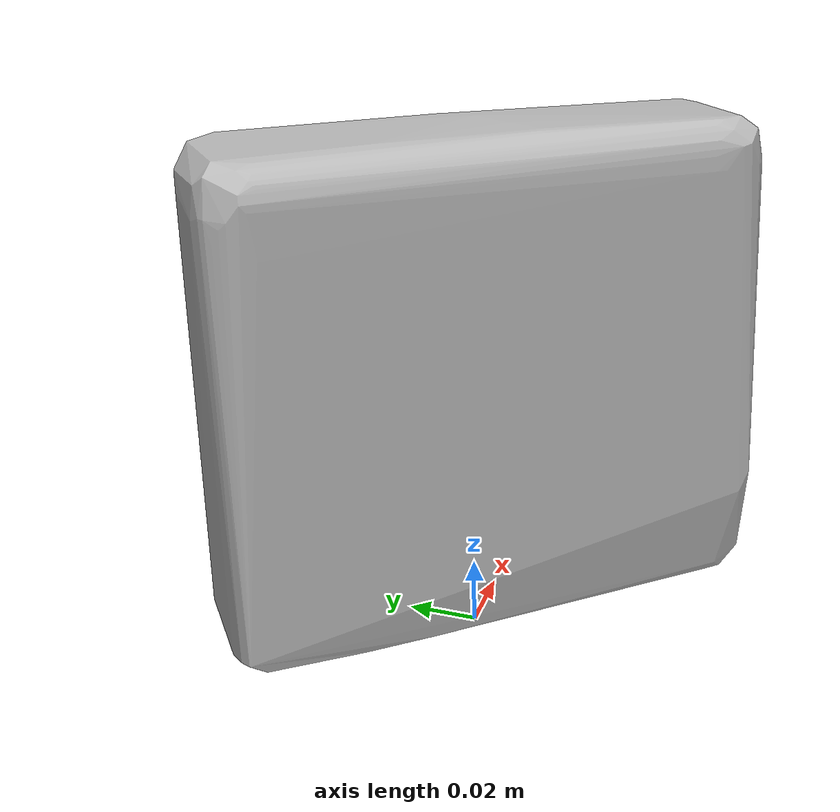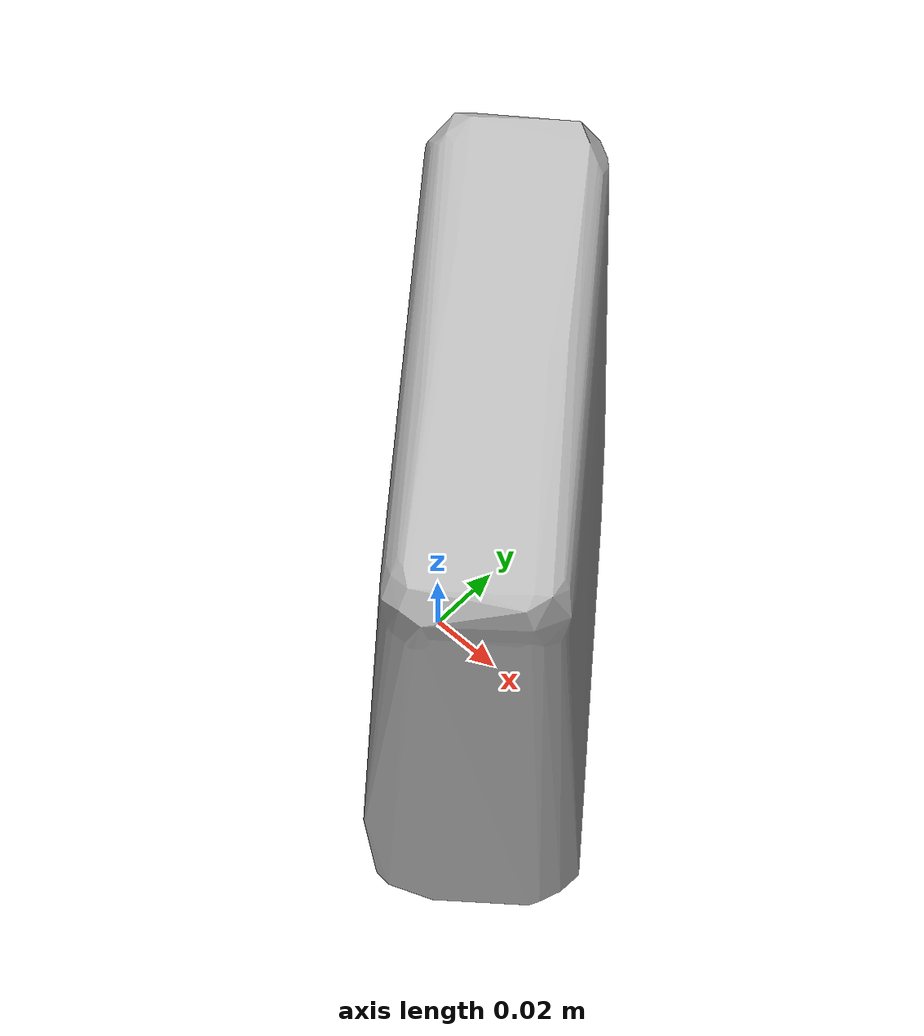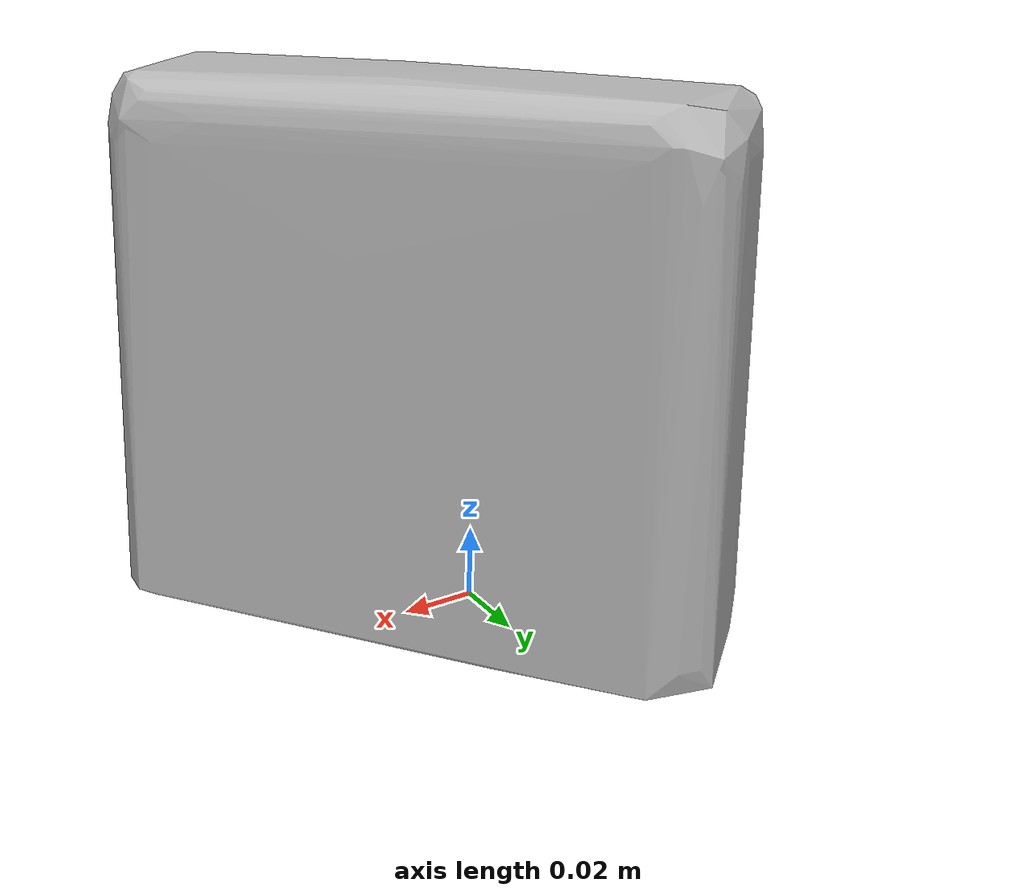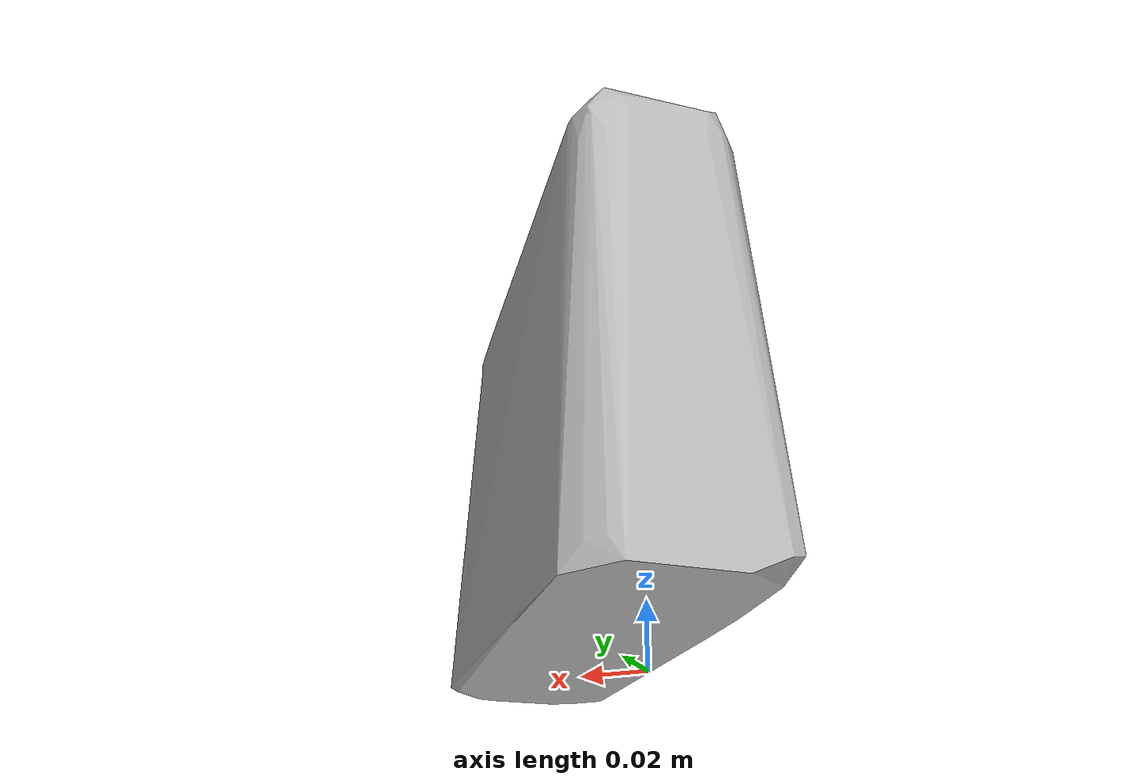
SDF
<?xml version='1.0'?>
<sdf version="1.4">
  <model name="nature_valley_sweet_and_salty_nut_almond">
    <static>false</static>
    <link name="link">
      <inertial>
        <pose>0.01693252233100533 0.0029891869216081258 0.07219999322188635 1.5557564076226083 -0.013121812543077645 -2.46204161586829</pose>
        <mass>0.10730573472292866</mass>
        <inertia>
          <ixx>0.0003758209684710337</ixx>
          <ixy>-8.231555495422452e-22</ixy>
          <ixz>-4.153069155282164e-20</ixz>
          <iyy>0.00023324456588697827</iyy>
          <iyz>-5.050413960154768e-22</iyz>
          <izz>0.00018819207549536967</izz>
        </inertia>
      </inertial>
      <collision name="collision">
        <geometry>
          <mesh>
            <!-- Use a downsampled mesh for collisions -->
            <uri>model:///nature_valley_sweet_and_salty_nut_almond/nature_valley_sweet_and_salty_nut_almond_250_collision.obj</uri>
	        </mesh>
        </geometry>
        <surface>
      </surface>
      </collision>
      <visual name="visual">
        <geometry>
          <mesh>
            <uri>model:///nature_valley_sweet_and_salty_nut_almond/optimized_tsdf_texture_mapped_mesh.obj</uri>
	        </mesh>
        </geometry>
        <material>
          <script>
            <uri>model:///nature_valley_sweet_and_salty_nut_almond/nature_valley_sweet_and_salty_nut_almond.material</uri>
            <name>nature_valley_sweet_and_salty_nut_almond</name>
          </script>
        </material>
      </visual>
    </link>
  </model>
</sdf>
